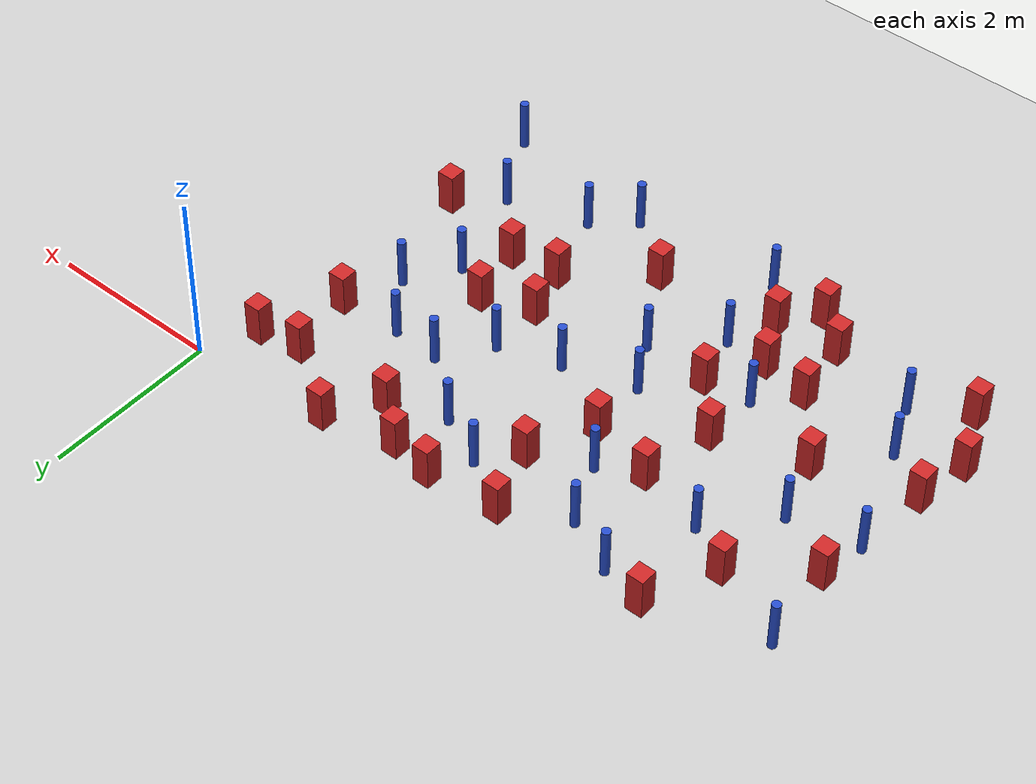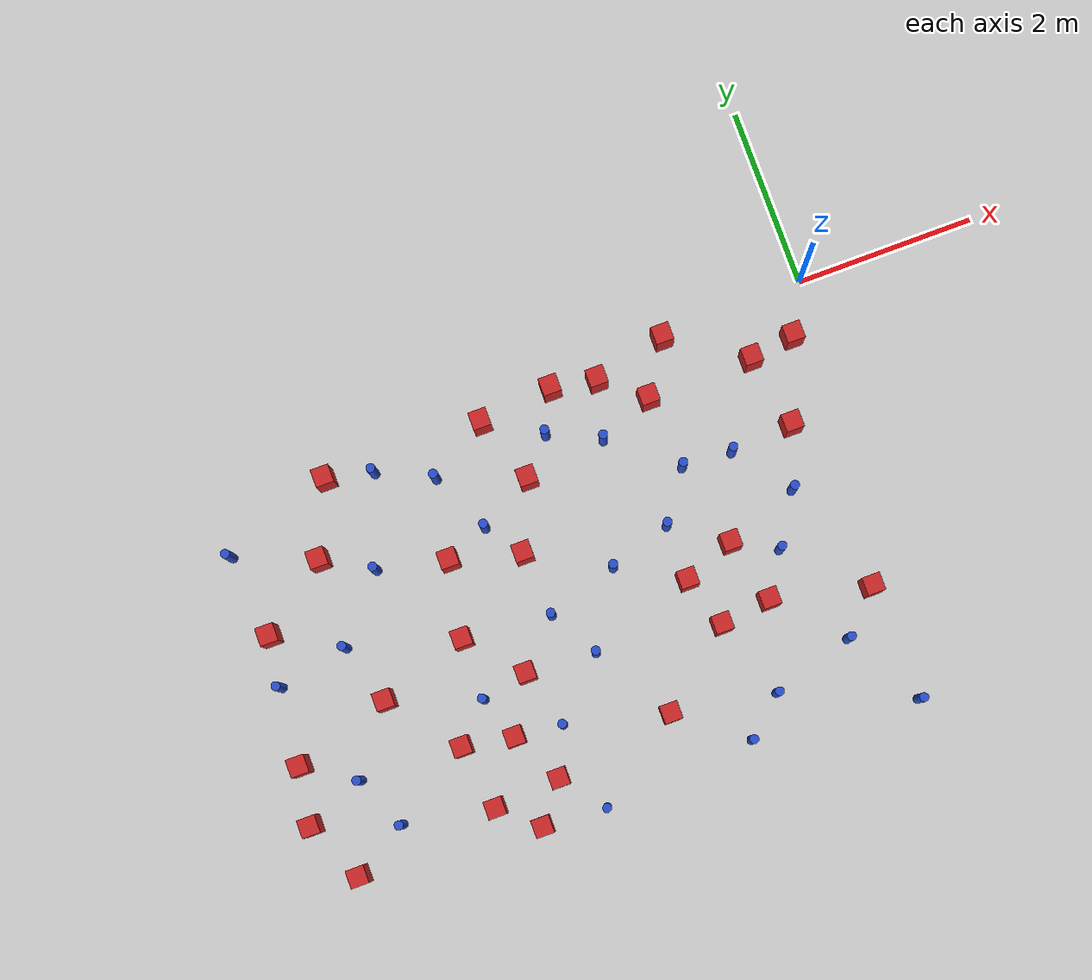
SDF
<sdf version="1.6">
 <world name="default">
  <model name="ground_plane">
   <static>1</static>
   <link name="link">
    <collision name="collision">
     <geometry><plane><normal>0 0 1</normal><size>100 100</size></plane></geometry>
     <surface><friction><ode><mu>100</mu><mu2>50</mu2></ode></friction></surface>
    </collision>
    <visual name="visual">
     <cast_shadows>0</cast_shadows>
     <geometry><plane><normal>0 0 1</normal><size>100 100</size></plane></geometry>
     <material>
      <ambient>1.0 1.0 1.0 1.0</ambient>
      <diffuse>0.8 0.8 0.8 1.0</diffuse>
      <specular>0.01 0.01 0.01 1.000000</specular>
     </material>
    </visual>
   </link>
  </model>
  <model name="pole_obstacle1">
   <static>true</static>
   <pose>-4.48256232331 -0.682127414277 2.88873142074e-08 -9.90536689837e-09 4.60219948989e-07 -1.2096599496e-07</pose>
   <link name="link">
    <pose>0 0 0.3 0 -0 0</pose>
    <inertial>
     <mass>1</mass>
     <inertia><ixx>0.145833</ixx><ixy>0</ixy><ixz>0</ixz><iyy>0.145833</iyy><iyz>0</iyz><izz>0.125</izz></inertia>
    </inertial>
    <collision name="collision">
     <geometry><cylinder><radius>0.05</radius><length>.6</length></cylinder></geometry>
    </collision>
    <visual name="visual">
     <geometry><cylinder><radius>0.05</radius><length>.6</length></cylinder></geometry>
     <material>
      <script><name>Gazebo/Blue</name><uri>file://media/materials/scripts/gazebo.material</uri></script>
     </material>
    </visual>
   </link>
  </model>
  <model name="square_post_obstacle8">
   <static>true</static>
   <pose>-4.6474370262 -1.57249042322 8.22691968438e-08 7.2212513382e-06 -7.54495500217e-07 2.29674213826e-05</pose>
   <link name="link">
    <pose>0 0 0.25 0 -0 0</pose>
    <inertial>
     <mass>100</mass>
     <inertia>
      <ixx>0.166667</ixx>
      <ixy>0</ixy>
      <ixz>0</ixz>
      <iyy>0.166667</iyy>
      <iyz>0</iyz>
      <izz>0.166667</izz>
     </inertia>
    </inertial>
    <collision name="collision"><geometry><box><size>.2 .2 .5</size></box></geometry></collision>
    <visual name="visual">
     <geometry><box><size>.2 .2 .5</size></box></geometry>
     <material>
      <script><name>Gazebo/Red</name><uri>file://media/materials/scripts/gazebo.material</uri></script>
     </material>
    </visual>
   </link>
  </model>
  <model name="pole_obstacle7">
   <static>true</static>
   <pose>-3.816750742 -2.50595241744 2.88873142074e-08 -9.90536689597e-09 4.60219948995e-07 -1.20965994957e-07</pose>
   <link name="link">
    <pose>0 0 0.3 0 -0 0</pose>
    <inertial>
     <mass>1</mass>
     <inertia><ixx>0.145833</ixx><ixy>0</ixy><ixz>0</ixz><iyy>0.145833</iyy><iyz>0</iyz><izz>0.125</izz></inertia>
    </inertial>
    <collision name="collision">
     <geometry><cylinder><radius>0.05</radius><length>.6</length></cylinder></geometry>
    </collision>
    <visual name="visual">
     <geometry><cylinder><radius>0.05</radius><length>.6</length></cylinder></geometry>
     <material>
      <script><name>Gazebo/Blue</name><uri>file://media/materials/scripts/gazebo.material</uri></script>
     </material>
    </visual>
   </link>
  </model>
  <model name="square_post_obstacle30">
   <static>true</static>
   <pose>-4.8008438077 -2.41623321414 8.22691968438e-08 7.2212513382e-06 -7.54495500217e-07 2.29674213826e-05</pose>
   <link name="link">
    <pose>0 0 0.25 0 -0 0</pose>
    <inertial>
     <mass>100</mass>
     <inertia>
      <ixx>0.166667</ixx>
      <ixy>0</ixy>
      <ixz>0</ixz>
      <iyy>0.166667</iyy>
      <iyz>0</iyz>
      <izz>0.166667</izz>
     </inertia>
    </inertial>
    <collision name="collision"><geometry><box><size>.2 .2 .5</size></box></geometry></collision>
    <visual name="visual">
     <geometry><box><size>.2 .2 .5</size></box></geometry>
     <material>
      <script><name>Gazebo/Red</name><uri>file://media/materials/scripts/gazebo.material</uri></script>
     </material>
    </visual>
   </link>
  </model>
  <model name="pole_obstacle26">
   <static>true</static>
   <pose>-3.96511217509 -4.63562692174 2.88873142074e-08 -9.90536690054e-09 4.60219948984e-07 -1.20965994964e-07</pose>
   <link name="link">
    <pose>0 0 0.3 0 -0 0</pose>
    <inertial>
     <mass>1</mass>
     <inertia><ixx>0.145833</ixx><ixy>0</ixy><ixz>0</ixz><iyy>0.145833</iyy><iyz>0</iyz><izz>0.125</izz></inertia>
    </inertial>
    <collision name="collision">
     <geometry><cylinder><radius>0.05</radius><length>.6</length></cylinder></geometry>
    </collision>
    <visual name="visual">
     <geometry><cylinder><radius>0.05</radius><length>.6</length></cylinder></geometry>
     <material>
      <script><name>Gazebo/Blue</name><uri>file://media/materials/scripts/gazebo.material</uri></script>
     </material>
    </visual>
   </link>
  </model>
  <model name="square_post_obstacle33">
   <static>true</static>
   <pose>-1.74691406362 -2.4382056888 8.22691968438e-08 7.2212513382e-06 -7.54495500217e-07 2.29674213826e-05</pose>
   <link name="link">
    <pose>0 0 0.25 0 -0 0</pose>
    <inertial>
     <mass>100</mass>
     <inertia>
      <ixx>0.166667</ixx>
      <ixy>0</ixy>
      <ixz>0</ixz>
      <iyy>0.166667</iyy>
      <iyz>0</iyz>
      <izz>0.166667</izz>
     </inertia>
    </inertial>
    <collision name="collision"><geometry><box><size>.2 .2 .5</size></box></geometry></collision>
    <visual name="visual">
     <geometry><box><size>.2 .2 .5</size></box></geometry>
     <material>
      <script><name>Gazebo/Red</name><uri>file://media/materials/scripts/gazebo.material</uri></script>
     </material>
    </visual>
   </link>
  </model>
  <model name="pole_obstacle29">
   <static>true</static>
   <pose>-4.16495708515 -1.3683757683 2.88873142074e-08 -9.90536689445e-09 4.60219948999e-07 -1.20965994956e-07</pose>
   <link name="link">
    <pose>0 0 0.3 0 -0 0</pose>
    <inertial>
     <mass>1</mass>
     <inertia><ixx>0.145833</ixx><ixy>0</ixy><ixz>0</ixz><iyy>0.145833</iyy><iyz>0</iyz><izz>0.125</izz></inertia>
    </inertial>
    <collision name="collision">
     <geometry><cylinder><radius>0.05</radius><length>.6</length></cylinder></geometry>
    </collision>
    <visual name="visual">
     <geometry><cylinder><radius>0.05</radius><length>.6</length></cylinder></geometry>
     <material>
      <script><name>Gazebo/Blue</name><uri>file://media/materials/scripts/gazebo.material</uri></script>
     </material>
    </visual>
   </link>
  </model>
  <model name="square_post_obstacle34">
   <static>true</static>
   <pose>-4.62961124829 -3.5913207542 8.22691968438e-08 7.2212513382e-06 -7.54495500217e-07 2.29674213826e-05</pose>
   <link name="link">
    <pose>0 0 0.25 0 -0 0</pose>
    <inertial>
     <mass>100</mass>
     <inertia>
      <ixx>0.166667</ixx>
      <ixy>0</ixy>
      <ixz>0</ixz>
      <iyy>0.166667</iyy>
      <iyz>0</iyz>
      <izz>0.166667</izz>
     </inertia>
    </inertial>
    <collision name="collision"><geometry><box><size>.2 .2 .5</size></box></geometry></collision>
    <visual name="visual">
     <geometry><box><size>.2 .2 .5</size></box></geometry>
     <material>
      <script><name>Gazebo/Red</name><uri>file://media/materials/scripts/gazebo.material</uri></script>
     </material>
    </visual>
   </link>
  </model>
  <model name="pole_obstacle33">
   <static>true</static>
   <pose>-6.33375835188 -3.4551613941 2.88873142074e-08 -9.90536690245e-09 4.6021994898e-07 -1.20965994966e-07</pose>
   <link name="link">
    <pose>0 0 0.3 0 -0 0</pose>
    <inertial>
     <mass>1</mass>
     <inertia><ixx>0.145833</ixx><ixy>0</ixy><ixz>0</ixz><iyy>0.145833</iyy><iyz>0</iyz><izz>0.125</izz></inertia>
    </inertial>
    <collision name="collision">
     <geometry><cylinder><radius>0.05</radius><length>.6</length></cylinder></geometry>
    </collision>
    <visual name="visual">
     <geometry><cylinder><radius>0.05</radius><length>.6</length></cylinder></geometry>
     <material>
      <script><name>Gazebo/Blue</name><uri>file://media/materials/scripts/gazebo.material</uri></script>
     </material>
    </visual>
   </link>
  </model>
  <model name="square_post_obstacle38">
   <static>true</static>
   <pose>-5.07591907823 -4.22730959868 8.22691968438e-08 7.22125133819e-06 -7.54495500217e-07 2.29674213826e-05</pose>
   <link name="link">
    <pose>0 0 0.25 0 -0 0</pose>
    <inertial>
     <mass>100</mass>
     <inertia>
      <ixx>0.166667</ixx>
      <ixy>0</ixy>
      <ixz>0</ixz>
      <iyy>0.166667</iyy>
      <iyz>0</iyz>
      <izz>0.166667</izz>
     </inertia>
    </inertial>
    <collision name="collision"><geometry><box><size>.2 .2 .5</size></box></geometry></collision>
    <visual name="visual">
     <geometry><box><size>.2 .2 .5</size></box></geometry>
     <material>
      <script><name>Gazebo/Red</name><uri>file://media/materials/scripts/gazebo.material</uri></script>
     </material>
    </visual>
   </link>
  </model>
  <model name="pole_obstacle41">
   <static>true</static>
   <pose>-1.37993979222 -1.52030531284 2.88873142074e-08 -9.90536689672e-09 4.60219948993e-07 -1.20965994959e-07</pose>
   <link name="link">
    <pose>0 0 0.3 0 -0 0</pose>
    <inertial>
     <mass>1</mass>
     <inertia><ixx>0.145833</ixx><ixy>0</ixy><ixz>0</ixz><iyy>0.145833</iyy><iyz>0</iyz><izz>0.125</izz></inertia>
    </inertial>
    <collision name="collision">
     <geometry><cylinder><radius>0.05</radius><length>.6</length></cylinder></geometry>
    </collision>
    <visual name="visual">
     <geometry><cylinder><radius>0.05</radius><length>.6</length></cylinder></geometry>
     <material>
      <script><name>Gazebo/Blue</name><uri>file://media/materials/scripts/gazebo.material</uri></script>
     </material>
    </visual>
   </link>
  </model>
  <model name="pole_obstacle42">
   <static>true</static>
   <pose>-6.80179766551 -2.22986992652 2.88873142074e-08 -9.90536690245e-09 4.6021994898e-07 -1.20965994966e-07</pose>
   <link name="link">
    <pose>0 0 0.3 0 -0 0</pose>
    <inertial>
     <mass>1</mass>
     <inertia><ixx>0.145833</ixx><ixy>0</ixy><ixz>0</ixz><iyy>0.145833</iyy><iyz>0</iyz><izz>0.125</izz></inertia>
    </inertial>
    <collision name="collision">
     <geometry><cylinder><radius>0.05</radius><length>.6</length></cylinder></geometry>
    </collision>
    <visual name="visual">
     <geometry><cylinder><radius>0.05</radius><length>.6</length></cylinder></geometry>
     <material>
      <script><name>Gazebo/Blue</name><uri>file://media/materials/scripts/gazebo.material</uri></script>
     </material>
    </visual>
   </link>
  </model>
  <model name="square_post_obstacle45">
   <static>true</static>
   <pose>-6.97961115178 -3.72867666224 8.22691968438e-08 7.2212513382e-06 -7.54495500217e-07 2.29674213826e-05</pose>
   <link name="link">
    <pose>0 0 0.25 0 -0 0</pose>
    <inertial>
     <mass>100</mass>
     <inertia>
      <ixx>0.166667</ixx>
      <ixy>0</ixy>
      <ixz>0</ixz>
      <iyy>0.166667</iyy>
      <iyz>0</iyz>
      <izz>0.166667</izz>
     </inertia>
    </inertial>
    <collision name="collision"><geometry><box><size>.2 .2 .5</size></box></geometry></collision>
    <visual name="visual">
     <geometry><box><size>.2 .2 .5</size></box></geometry>
     <material>
      <script><name>Gazebo/Red</name><uri>file://media/materials/scripts/gazebo.material</uri></script>
     </material>
    </visual>
   </link>
  </model>
  <model name="pole_obstacle52">
   <static>true</static>
   <pose>-2.31934597339 -2.03014902628 2.88873142074e-08 -9.9053668955e-09 4.60219948996e-07 -1.20965994957e-07</pose>
   <link name="link">
    <pose>0 0 0.3 0 -0 0</pose>
    <inertial>
     <mass>1</mass>
     <inertia><ixx>0.145833</ixx><ixy>0</ixy><ixz>0</ixz><iyy>0.145833</iyy><iyz>0</iyz><izz>0.125</izz></inertia>
    </inertial>
    <collision name="collision">
     <geometry><cylinder><radius>0.05</radius><length>.6</length></cylinder></geometry>
    </collision>
    <visual name="visual">
     <geometry><cylinder><radius>0.05</radius><length>.6</length></cylinder></geometry>
     <material>
      <script><name>Gazebo/Blue</name><uri>file://media/materials/scripts/gazebo.material</uri></script>
     </material>
    </visual>
   </link>
  </model>
  <model name="square_post_obstacle57">
   <static>true</static>
   <pose>-2.14033545094 -3.23000905375 8.22691968438e-08 7.2212513382e-06 -7.54495500217e-07 2.29674213826e-05</pose>
   <link name="link">
    <pose>0 0 0.25 0 -0 0</pose>
    <inertial>
     <mass>100</mass>
     <inertia>
      <ixx>0.166667</ixx>
      <ixy>0</ixy>
      <ixz>0</ixz>
      <iyy>0.166667</iyy>
      <iyz>0</iyz>
      <izz>0.166667</izz>
     </inertia>
    </inertial>
    <collision name="collision"><geometry><box><size>.2 .2 .5</size></box></geometry></collision>
    <visual name="visual">
     <geometry><box><size>.2 .2 .5</size></box></geometry>
     <material>
      <script><name>Gazebo/Red</name><uri>file://media/materials/scripts/gazebo.material</uri></script>
     </material>
    </visual>
   </link>
  </model>
  <model name="pole_obstacle54">
   <static>true</static>
   <pose>-1.83764317383 -4.12270464609 2.88873142074e-08 -9.90536689852e-09 4.60219948989e-07 -1.2096599496e-07</pose>
   <link name="link">
    <pose>0 0 0.3 0 -0 0</pose>
    <inertial>
     <mass>1</mass>
     <inertia><ixx>0.145833</ixx><ixy>0</ixy><ixz>0</ixz><iyy>0.145833</iyy><iyz>0</iyz><izz>0.125</izz></inertia>
    </inertial>
    <collision name="collision">
     <geometry><cylinder><radius>0.05</radius><length>.6</length></cylinder></geometry>
    </collision>
    <visual name="visual">
     <geometry><cylinder><radius>0.05</radius><length>.6</length></cylinder></geometry>
     <material>
      <script><name>Gazebo/Blue</name><uri>file://media/materials/scripts/gazebo.material</uri></script>
     </material>
    </visual>
   </link>
  </model>
  <model name="square_post_obstacle62">
   <static>true</static>
   <pose>-5.79745076857 -2.7494438376 8.22691968438e-08 7.2212513382e-06 -7.54495500217e-07 2.29674213826e-05</pose>
   <link name="link">
    <pose>0 0 0.25 0 -0 0</pose>
    <inertial>
     <mass>100</mass>
     <inertia>
      <ixx>0.166667</ixx>
      <ixy>0</ixy>
      <ixz>0</ixz>
      <iyy>0.166667</iyy>
      <iyz>0</iyz>
      <izz>0.166667</izz>
     </inertia>
    </inertial>
    <collision name="collision"><geometry><box><size>.2 .2 .5</size></box></geometry></collision>
    <visual name="visual">
     <geometry><box><size>.2 .2 .5</size></box></geometry>
     <material>
      <script><name>Gazebo/Red</name><uri>file://media/materials/scripts/gazebo.material</uri></script>
     </material>
    </visual>
   </link>
  </model>
  <model name="pole_obstacle63">
   <static>true</static>
   <pose>-5.08738122883 -0.395375101101 2.88873142074e-08 -9.90536689981e-09 4.60219948986e-07 -1.20965994962e-07</pose>
   <link name="link">
    <pose>0 0 0.3 0 -0 0</pose>
    <inertial>
     <mass>1</mass>
     <inertia><ixx>0.145833</ixx><ixy>0</ixy><ixz>0</ixz><iyy>0.145833</iyy><iyz>0</iyz><izz>0.125</izz></inertia>
    </inertial>
    <collision name="collision">
     <geometry><cylinder><radius>0.05</radius><length>.6</length></cylinder></geometry>
    </collision>
    <visual name="visual">
     <geometry><cylinder><radius>0.05</radius><length>.6</length></cylinder></geometry>
     <material>
      <script><name>Gazebo/Blue</name><uri>file://media/materials/scripts/gazebo.material</uri></script>
     </material>
    </visual>
   </link>
  </model>
  <model name="square_post_obstacle66">
   <static>true</static>
   <pose>-1.57399593193 -3.156085923 8.22691968438e-08 7.2212513382e-06 -7.54495500217e-07 2.29674213826e-05</pose>
   <link name="link">
    <pose>0 0 0.25 0 -0 0</pose>
    <inertial>
     <mass>100</mass>
     <inertia>
      <ixx>0.166667</ixx>
      <ixy>0</ixy>
      <ixz>0</ixz>
      <iyy>0.166667</iyy>
      <iyz>0</iyz>
      <izz>0.166667</izz>
     </inertia>
    </inertial>
    <collision name="collision"><geometry><box><size>.2 .2 .5</size></box></geometry></collision>
    <visual name="visual">
     <geometry><box><size>.2 .2 .5</size></box></geometry>
     <material>
      <script><name>Gazebo/Red</name><uri>file://media/materials/scripts/gazebo.material</uri></script>
     </material>
    </visual>
   </link>
  </model>
  <model name="square_post_obstacle67">
   <static>true</static>
   <pose>-3.55502041269 -1.03231475909 8.22691968438e-08 7.2212513382e-06 -7.54495500217e-07 2.29674213826e-05</pose>
   <link name="link">
    <pose>0 0 0.25 0 -0 0</pose>
    <inertial>
     <mass>100</mass>
     <inertia>
      <ixx>0.166667</ixx>
      <ixy>0</ixy>
      <ixz>0</ixz>
      <iyy>0.166667</iyy>
      <iyz>0</iyz>
      <izz>0.166667</izz>
     </inertia>
    </inertial>
    <collision name="collision"><geometry><box><size>.2 .2 .5</size></box></geometry></collision>
    <visual name="visual">
     <geometry><box><size>.2 .2 .5</size></box></geometry>
     <material>
      <script><name>Gazebo/Red</name><uri>file://media/materials/scripts/gazebo.material</uri></script>
     </material>
    </visual>
   </link>
  </model>
  <model name="square_post_obstacle70">
   <static>true</static>
   <pose>-3.81846954681 -0.283123942665 8.22691968438e-08 7.2212513382e-06 -7.54495500217e-07 2.29674213826e-05</pose>
   <link name="link">
    <pose>0 0 0.25 0 -0 0</pose>
    <inertial>
     <mass>100</mass>
     <inertia>
      <ixx>0.166667</ixx>
      <ixy>0</ixy>
      <ixz>0</ixz>
      <iyy>0.166667</iyy>
      <iyz>0</iyz>
      <izz>0.166667</izz>
     </inertia>
    </inertial>
    <collision name="collision"><geometry><box><size>.2 .2 .5</size></box></geometry></collision>
    <visual name="visual">
     <geometry><box><size>.2 .2 .5</size></box></geometry>
     <material>
      <script><name>Gazebo/Red</name><uri>file://media/materials/scripts/gazebo.material</uri></script>
     </material>
    </visual>
   </link>
  </model>
  <model name="square_post_obstacle72">
   <static>true</static>
   <pose>-5.95590247106 -1.08578072707 8.22691968438e-08 7.2212513382e-06 -7.54495500217e-07 2.29674213826e-05</pose>
   <link name="link">
    <pose>0 0 0.25 0 -0 0</pose>
    <inertial>
     <mass>100</mass>
     <inertia>
      <ixx>0.166667</ixx>
      <ixy>0</ixy>
      <ixz>0</ixz>
      <iyy>0.166667</iyy>
      <iyz>0</iyz>
      <izz>0.166667</izz>
     </inertia>
    </inertial>
    <collision name="collision"><geometry><box><size>.2 .2 .5</size></box></geometry></collision>
    <visual name="visual">
     <geometry><box><size>.2 .2 .5</size></box></geometry>
     <material>
      <script><name>Gazebo/Red</name><uri>file://media/materials/scripts/gazebo.material</uri></script>
     </material>
    </visual>
   </link>
  </model>
  <model name="square_post_obstacle76">
   <static>true</static>
   <pose>-2.48041100913 -0.282626245063 8.22691968438e-08 7.2212513382e-06 -7.54495500217e-07 2.29674213826e-05</pose>
   <link name="link">
    <pose>0 0 0.25 0 -0 0</pose>
    <inertial>
     <mass>100</mass>
     <inertia>
      <ixx>0.166667</ixx>
      <ixy>0</ixy>
      <ixz>0</ixz>
      <iyy>0.166667</iyy>
      <iyz>0</iyz>
      <izz>0.166667</izz>
     </inertia>
    </inertial>
    <collision name="collision"><geometry><box><size>.2 .2 .5</size></box></geometry></collision>
    <visual name="visual">
     <geometry><box><size>.2 .2 .5</size></box></geometry>
     <material>
      <script><name>Gazebo/Red</name><uri>file://media/materials/scripts/gazebo.material</uri></script>
     </material>
    </visual>
   </link>
  </model>
  <model name="pole_obstacle76">
   <static>true</static>
   <pose>-6.07376556748 -4.04742443338 2.88873142074e-08 -9.90536690819e-09 4.60219948966e-07 -1.20965994975e-07</pose>
   <link name="link">
    <pose>0 0 0.3 0 -0 0</pose>
    <inertial>
     <mass>1</mass>
     <inertia><ixx>0.145833</ixx><ixy>0</ixy><ixz>0</ixz><iyy>0.145833</iyy><iyz>0</iyz><izz>0.125</izz></inertia>
    </inertial>
    <collision name="collision">
     <geometry><cylinder><radius>0.05</radius><length>.6</length></cylinder></geometry>
    </collision>
    <visual name="visual">
     <geometry><cylinder><radius>0.05</radius><length>.6</length></cylinder></geometry>
     <material>
      <script><name>Gazebo/Blue</name><uri>file://media/materials/scripts/gazebo.material</uri></script>
     </material>
    </visual>
   </link>
  </model>
  <model name="pole_obstacle81">
   <static>true</static>
   <pose>-1.9393557773 -1.48946138656 2.88873142074e-08 -9.90536689672e-09 4.60219948993e-07 -1.20965994959e-07</pose>
   <link name="link">
    <pose>0 0 0.3 0 -0 0</pose>
    <inertial>
     <mass>1</mass>
     <inertia><ixx>0.145833</ixx><ixy>0</ixy><ixz>0</ixz><iyy>0.145833</iyy><iyz>0</iyz><izz>0.125</izz></inertia>
    </inertial>
    <collision name="collision">
     <geometry><cylinder><radius>0.05</radius><length>.6</length></cylinder></geometry>
    </collision>
    <visual name="visual">
     <geometry><cylinder><radius>0.05</radius><length>.6</length></cylinder></geometry>
     <material>
      <script><name>Gazebo/Blue</name><uri>file://media/materials/scripts/gazebo.material</uri></script>
     </material>
    </visual>
   </link>
  </model>
  <model name="pole_obstacle87">
   <static>true</static>
   <pose>-3.50674768376 -3.0472135589 2.88873142074e-08 -9.90536690232e-09 4.6021994898e-07 -1.20965994968e-07</pose>
   <link name="link">
    <pose>0 0 0.3 0 -0 0</pose>
    <inertial>
     <mass>1</mass>
     <inertia><ixx>0.145833</ixx><ixy>0</ixy><ixz>0</ixz><iyy>0.145833</iyy><iyz>0</iyz><izz>0.125</izz></inertia>
    </inertial>
    <collision name="collision">
     <geometry><cylinder><radius>0.05</radius><length>.6</length></cylinder></geometry>
    </collision>
    <visual name="visual">
     <geometry><cylinder><radius>0.05</radius><length>.6</length></cylinder></geometry>
     <material>
      <script><name>Gazebo/Blue</name><uri>file://media/materials/scripts/gazebo.material</uri></script>
     </material>
    </visual>
   </link>
  </model>
  <model name="pole_obstacle88">
   <static>true</static>
   <pose>-0.433065052759 -4.70892191869 2.88873142074e-08 -9.90536689683e-09 4.60219948993e-07 -1.20965994957e-07</pose>
   <link name="link">
    <pose>0 0 0.3 0 -0 0</pose>
    <inertial>
     <mass>1</mass>
     <inertia><ixx>0.145833</ixx><ixy>0</ixy><ixz>0</ixz><iyy>0.145833</iyy><iyz>0</iyz><izz>0.125</izz></inertia>
    </inertial>
    <collision name="collision">
     <geometry><cylinder><radius>0.05</radius><length>.6</length></cylinder></geometry>
    </collision>
    <visual name="visual">
     <geometry><cylinder><radius>0.05</radius><length>.6</length></cylinder></geometry>
     <material>
      <script><name>Gazebo/Blue</name><uri>file://media/materials/scripts/gazebo.material</uri></script>
     </material>
    </visual>
   </link>
  </model>
  <model name="square_post_obstacle84">
   <static>true</static>
   <pose>-2.98490896044 -0.195848546672 8.22691968438e-08 7.2212513382e-06 -7.54495500217e-07 2.29674213826e-05</pose>
   <link name="link">
    <pose>0 0 0.25 0 -0 0</pose>
    <inertial>
     <mass>100</mass>
     <inertia>
      <ixx>0.166667</ixx>
      <ixy>0</ixy>
      <ixz>0</ixz>
      <iyy>0.166667</iyy>
      <iyz>0</iyz>
      <izz>0.166667</izz>
     </inertia>
    </inertial>
    <collision name="collision"><geometry><box><size>.2 .2 .5</size></box></geometry></collision>
    <visual name="visual">
     <geometry><box><size>.2 .2 .5</size></box></geometry>
     <material>
      <script><name>Gazebo/Red</name><uri>file://media/materials/scripts/gazebo.material</uri></script>
     </material>
    </visual>
   </link>
  </model>
  <model name="square_post_obstacle85">
   <static>true</static>
   <pose>-0.489006921023 -3.40232617651 8.22691968438e-08 7.2212513382e-06 -7.54495500217e-07 2.29674213826e-05</pose>
   <link name="link">
    <pose>0 0 0.25 0 -0 0</pose>
    <inertial>
     <mass>100</mass>
     <inertia>
      <ixx>0.166667</ixx>
      <ixy>0</ixy>
      <ixz>0</ixz>
      <iyy>0.166667</iyy>
      <iyz>0</iyz>
      <izz>0.166667</izz>
     </inertia>
    </inertial>
    <collision name="collision"><geometry><box><size>.2 .2 .5</size></box></geometry></collision>
    <visual name="visual">
     <geometry><box><size>.2 .2 .5</size></box></geometry>
     <material>
      <script><name>Gazebo/Red</name><uri>file://media/materials/scripts/gazebo.material</uri></script>
     </material>
    </visual>
   </link>
  </model>
  <model name="square_post_obstacle102">
   <static>true</static>
   <pose>-0.831196389787 -0.641540344421 8.22691968438e-08 7.2212513382e-06 -7.54495500217e-07 2.29674213826e-05</pose>
   <link name="link">
    <pose>0 0 0.25 0 -0 0</pose>
    <inertial>
     <mass>100</mass>
     <inertia>
      <ixx>0.166667</ixx>
      <ixy>0</ixy>
      <ixz>0</ixz>
      <iyy>0.166667</iyy>
      <iyz>0</iyz>
      <izz>0.166667</izz>
     </inertia>
    </inertial>
    <collision name="collision"><geometry><box><size>.2 .2 .5</size></box></geometry></collision>
    <visual name="visual">
     <geometry><box><size>.2 .2 .5</size></box></geometry>
     <material>
      <script><name>Gazebo/Red</name><uri>file://media/materials/scripts/gazebo.material</uri></script>
     </material>
    </visual>
   </link>
  </model>
  <model name="pole_obstacle118">
   <static>true</static>
   <pose>-2.26540579371 -4.50014755744 2.88873142074e-08 -9.90536689859e-09 4.60219948989e-07 -1.20965994961e-07</pose>
   <link name="link">
    <pose>0 0 0.3 0 -0 0</pose>
    <inertial>
     <mass>1</mass>
     <inertia><ixx>0.145833</ixx><ixy>0</ixy><ixz>0</ixz><iyy>0.145833</iyy><iyz>0</iyz><izz>0.125</izz></inertia>
    </inertial>
    <collision name="collision">
     <geometry><cylinder><radius>0.05</radius><length>.6</length></cylinder></geometry>
    </collision>
    <visual name="visual">
     <geometry><cylinder><radius>0.05</radius><length>.6</length></cylinder></geometry>
     <material>
      <script><name>Gazebo/Blue</name><uri>file://media/materials/scripts/gazebo.material</uri></script>
     </material>
    </visual>
   </link>
  </model>
  <model name="square_post_obstacle106">
   <static>true</static>
   <pose>-6.87989568143 -3.09163449804 8.22691968438e-08 7.2212513382e-06 -7.54495500217e-07 2.29674213826e-05</pose>
   <link name="link">
    <pose>0 0 0.25 0 -0 0</pose>
    <inertial>
     <mass>100</mass>
     <inertia>
      <ixx>0.166667</ixx>
      <ixy>0</ixy>
      <ixz>0</ixz>
      <iyy>0.166667</iyy>
      <iyz>0</iyz>
      <izz>0.166667</izz>
     </inertia>
    </inertial>
    <collision name="collision"><geometry><box><size>.2 .2 .5</size></box></geometry></collision>
    <visual name="visual">
     <geometry><box><size>.2 .2 .5</size></box></geometry>
     <material>
      <script><name>Gazebo/Red</name><uri>file://media/materials/scripts/gazebo.material</uri></script>
     </material>
    </visual>
   </link>
  </model>
  <model name="pole_obstacle119">
   <static>true</static>
   <pose>-3.20684661266 -0.645701694814 2.88873142074e-08 -9.90536689285e-09 4.60219949002e-07 -1.20965994953e-07</pose>
   <link name="link">
    <pose>0 0 0.3 0 -0 0</pose>
    <inertial>
     <mass>1</mass>
     <inertia><ixx>0.145833</ixx><ixy>0</ixy><ixz>0</ixz><iyy>0.145833</iyy><iyz>0</iyz><izz>0.125</izz></inertia>
    </inertial>
    <collision name="collision">
     <geometry><cylinder><radius>0.05</radius><length>.6</length></cylinder></geometry>
    </collision>
    <visual name="visual">
     <geometry><cylinder><radius>0.05</radius><length>.6</length></cylinder></geometry>
     <material>
      <script><name>Gazebo/Blue</name><uri>file://media/materials/scripts/gazebo.material</uri></script>
     </material>
    </visual>
   </link>
  </model>
  <model name="pole_obstacle121">
   <static>true</static>
   <pose>-4.80580803542 -3.10242670116 2.88873142074e-08 -9.90536690245e-09 4.6021994898e-07 -1.20965994966e-07</pose>
   <link name="link">
    <pose>0 0 0.3 0 -0 0</pose>
    <inertial>
     <mass>1</mass>
     <inertia><ixx>0.145833</ixx><ixy>0</ixy><ixz>0</ixz><iyy>0.145833</iyy><iyz>0</iyz><izz>0.125</izz></inertia>
    </inertial>
    <collision name="collision">
     <geometry><cylinder><radius>0.05</radius><length>.6</length></cylinder></geometry>
    </collision>
    <visual name="visual">
     <geometry><cylinder><radius>0.05</radius><length>.6</length></cylinder></geometry>
     <material>
      <script><name>Gazebo/Blue</name><uri>file://media/materials/scripts/gazebo.material</uri></script>
     </material>
    </visual>
   </link>
  </model>
  <model name="pole_obstacle137">
   <static>true</static>
   <pose>-4.10434087686 -3.6487826974 2.88873142074e-08 -9.90536690245e-09 4.6021994898e-07 -1.20965994966e-07</pose>
   <link name="link">
    <pose>0 0 0.3 0 -0 0</pose>
    <inertial>
     <mass>1</mass>
     <inertia><ixx>0.145833</ixx><ixy>0</ixy><ixz>0</ixz><iyy>0.145833</iyy><iyz>0</iyz><izz>0.125</izz></inertia>
    </inertial>
    <collision name="collision">
     <geometry><cylinder><radius>0.05</radius><length>.6</length></cylinder></geometry>
    </collision>
    <visual name="visual">
     <geometry><cylinder><radius>0.05</radius><length>.6</length></cylinder></geometry>
     <material>
      <script><name>Gazebo/Blue</name><uri>file://media/materials/scripts/gazebo.material</uri></script>
     </material>
    </visual>
   </link>
  </model>
  <model name="square_post_obstacle124">
   <static>true</static>
   <pose>-5.60695419741 -0.277272276515 8.22691968438e-08 7.2212513382e-06 -7.54495500217e-07 2.29674213826e-05</pose>
   <link name="link">
    <pose>0 0 0.25 0 -0 0</pose>
    <inertial>
     <mass>100</mass>
     <inertia>
      <ixx>0.166667</ixx>
      <ixy>0</ixy>
      <ixz>0</ixz>
      <iyy>0.166667</iyy>
      <iyz>0</iyz>
      <izz>0.166667</izz>
     </inertia>
    </inertial>
    <collision name="collision"><geometry><box><size>.2 .2 .5</size></box></geometry></collision>
    <visual name="visual">
     <geometry><box><size>.2 .2 .5</size></box></geometry>
     <material>
      <script><name>Gazebo/Red</name><uri>file://media/materials/scripts/gazebo.material</uri></script>
     </material>
    </visual>
   </link>
  </model>
  <model name="square_post_obstacle125">
   <static>true</static>
   <pose>-2.98477727234 -3.92984585648 8.22691968438e-08 7.2212513382e-06 -7.54495500217e-07 2.29674213826e-05</pose>
   <link name="link">
    <pose>0 0 0.25 0 -0 0</pose>
    <inertial>
     <mass>100</mass>
     <inertia>
      <ixx>0.166667</ixx>
      <ixy>0</ixy>
      <ixz>0</ixz>
      <iyy>0.166667</iyy>
      <iyz>0</iyz>
      <izz>0.166667</izz>
     </inertia>
    </inertial>
    <collision name="collision"><geometry><box><size>.2 .2 .5</size></box></geometry></collision>
    <visual name="visual">
     <geometry><box><size>.2 .2 .5</size></box></geometry>
     <material>
      <script><name>Gazebo/Red</name><uri>file://media/materials/scripts/gazebo.material</uri></script>
     </material>
    </visual>
   </link>
  </model>
  <model name="square_post_obstacle129">
   <static>true</static>
   <pose>-6.67394298799 -4.39961832617 8.22691968438e-08 7.2212513382e-06 -7.54495500217e-07 2.29674213826e-05</pose>
   <link name="link">
    <pose>0 0 0.25 0 -0 0</pose>
    <inertial>
     <mass>100</mass>
     <inertia>
      <ixx>0.166667</ixx>
      <ixy>0</ixy>
      <ixz>0</ixz>
      <iyy>0.166667</iyy>
      <iyz>0</iyz>
      <izz>0.166667</izz>
     </inertia>
    </inertial>
    <collision name="collision"><geometry><box><size>.2 .2 .5</size></box></geometry></collision>
    <visual name="visual">
     <geometry><box><size>.2 .2 .5</size></box></geometry>
     <material>
      <script><name>Gazebo/Red</name><uri>file://media/materials/scripts/gazebo.material</uri></script>
     </material>
    </visual>
   </link>
  </model>
  <model name="square_post_obstacle136">
   <static>true</static>
   <pose>-4.67178367451 -4.58331127081 8.22691968438e-08 7.22125133819e-06 -7.54495500217e-07 2.29674213826e-05</pose>
   <link name="link">
    <pose>0 0 0.25 0 -0 0</pose>
    <inertial>
     <mass>100</mass>
     <inertia>
      <ixx>0.166667</ixx>
      <ixy>0</ixy>
      <ixz>0</ixz>
      <iyy>0.166667</iyy>
      <iyz>0</iyz>
      <izz>0.166667</izz>
     </inertia>
    </inertial>
    <collision name="collision"><geometry><box><size>.2 .2 .5</size></box></geometry></collision>
    <visual name="visual">
     <geometry><box><size>.2 .2 .5</size></box></geometry>
     <material>
      <script><name>Gazebo/Red</name><uri>file://media/materials/scripts/gazebo.material</uri></script>
     </material>
    </visual>
   </link>
  </model>
  <model name="pole_obstacle154">
   <static>true</static>
   <pose>-0.910939861109 -2.13224247097 2.88873142074e-08 -9.90536689636e-09 4.60219948994e-07 -1.20965994958e-07</pose>
   <link name="link">
    <pose>0 0 0.3 0 -0 0</pose>
    <inertial>
     <mass>1</mass>
     <inertia><ixx>0.145833</ixx><ixy>0</ixy><ixz>0</ixz><iyy>0.145833</iyy><iyz>0</iyz><izz>0.125</izz></inertia>
    </inertial>
    <collision name="collision">
     <geometry><cylinder><radius>0.05</radius><length>.6</length></cylinder></geometry>
    </collision>
    <visual name="visual">
     <geometry><cylinder><radius>0.05</radius><length>.6</length></cylinder></geometry>
     <material>
      <script><name>Gazebo/Blue</name><uri>file://media/materials/scripts/gazebo.material</uri></script>
     </material>
    </visual>
   </link>
  </model>
  <model name="square_post_obstacle148">
   <static>true</static>
   <pose>-2.02554708108 -0.660023204118 8.22691968438e-08 7.2212513382e-06 -7.54495500217e-07 2.29674213826e-05</pose>
   <link name="link">
    <pose>0 0 0.25 0 -0 0</pose>
    <inertial>
     <mass>100</mass>
     <inertia>
      <ixx>0.166667</ixx>
      <ixy>0</ixy>
      <ixz>0</ixz>
      <iyy>0.166667</iyy>
      <iyz>0</iyz>
      <izz>0.166667</izz>
     </inertia>
    </inertial>
    <collision name="collision"><geometry><box><size>.2 .2 .5</size></box></geometry></collision>
    <visual name="visual">
     <geometry><box><size>.2 .2 .5</size></box></geometry>
     <material>
      <script><name>Gazebo/Red</name><uri>file://media/materials/scripts/gazebo.material</uri></script>
     </material>
    </visual>
   </link>
  </model>
  <model name="square_post_obstacle154">
   <static>true</static>
   <pose>-6.72547252961 -1.67034380565 8.22691968438e-08 7.2212513382e-06 -7.54495500217e-07 2.29674213826e-05</pose>
   <link name="link">
    <pose>0 0 0.25 0 -0 0</pose>
    <inertial>
     <mass>100</mass>
     <inertia>
      <ixx>0.166667</ixx>
      <ixy>0</ixy>
      <ixz>0</ixz>
      <iyy>0.166667</iyy>
      <iyz>0</iyz>
      <izz>0.166667</izz>
     </inertia>
    </inertial>
    <collision name="collision"><geometry><box><size>.2 .2 .5</size></box></geometry></collision>
    <visual name="visual">
     <geometry><box><size>.2 .2 .5</size></box></geometry>
     <material>
      <script><name>Gazebo/Red</name><uri>file://media/materials/scripts/gazebo.material</uri></script>
     </material>
    </visual>
   </link>
  </model>
  <model name="pole_obstacle163">
   <static>true</static>
   <pose>-2.63813611391 -0.912844334364 2.88873142074e-08 -9.90536689285e-09 4.60219949002e-07 -1.20965994953e-07</pose>
   <link name="link">
    <pose>0 0 0.3 0 -0 0</pose>
    <inertial>
     <mass>1</mass>
     <inertia><ixx>0.145833</ixx><ixy>0</ixy><ixz>0</ixz><iyy>0.145833</iyy><iyz>0</iyz><izz>0.125</izz></inertia>
    </inertial>
    <collision name="collision">
     <geometry><cylinder><radius>0.05</radius><length>.6</length></cylinder></geometry>
    </collision>
    <visual name="visual">
     <geometry><cylinder><radius>0.05</radius><length>.6</length></cylinder></geometry>
     <material>
      <script><name>Gazebo/Blue</name><uri>file://media/materials/scripts/gazebo.material</uri></script>
     </material>
    </visual>
   </link>
  </model>
  <model name="pole_obstacle164">
   <static>true</static>
   <pose>-6.84073999234 -0.72237744343 2.88873142074e-08 -9.90536689837e-09 4.60219948989e-07 -1.2096599496e-07</pose>
   <link name="link">
    <pose>0 0 0.3 0 -0 0</pose>
    <inertial>
     <mass>1</mass>
     <inertia><ixx>0.145833</ixx><ixy>0</ixy><ixz>0</ixz><iyy>0.145833</iyy><iyz>0</iyz><izz>0.125</izz></inertia>
    </inertial>
    <collision name="collision">
     <geometry><cylinder><radius>0.05</radius><length>.6</length></cylinder></geometry>
    </collision>
    <visual name="visual">
     <geometry><cylinder><radius>0.05</radius><length>.6</length></cylinder></geometry>
     <material>
      <script><name>Gazebo/Blue</name><uri>file://media/materials/scripts/gazebo.material</uri></script>
     </material>
    </visual>
   </link>
  </model>
  <model name="pole_obstacle166">
   <static>true</static>
   <pose>-5.42130743709 -1.39287766508 2.88873142074e-08 -9.90536689445e-09 4.60219948999e-07 -1.20965994956e-07</pose>
   <link name="link">
    <pose>0 0 0.3 0 -0 0</pose>
    <inertial>
     <mass>1</mass>
     <inertia><ixx>0.145833</ixx><ixy>0</ixy><ixz>0</ixz><iyy>0.145833</iyy><iyz>0</iyz><izz>0.125</izz></inertia>
    </inertial>
    <collision name="collision">
     <geometry><cylinder><radius>0.05</radius><length>.6</length></cylinder></geometry>
    </collision>
    <visual name="visual">
     <geometry><cylinder><radius>0.05</radius><length>.6</length></cylinder></geometry>
     <material>
      <script><name>Gazebo/Blue</name><uri>file://media/materials/scripts/gazebo.material</uri></script>
     </material>
    </visual>
   </link>
  </model>
  <model name="square_post_obstacle160">
   <static>true</static>
   <pose>-3.87574939339 -1.7777651461 8.22691968438e-08 7.22125133819e-06 -7.54495500217e-07 2.29674213826e-05</pose>
   <link name="link">
    <pose>0 0 0.25 0 -0 0</pose>
    <inertial>
     <mass>100</mass>
     <inertia>
      <ixx>0.166667</ixx>
      <ixy>0</ixy>
      <ixz>0</ixz>
      <iyy>0.166667</iyy>
      <iyz>0</iyz>
      <izz>0.166667</izz>
     </inertia>
    </inertial>
    <collision name="collision"><geometry><box><size>.2 .2 .5</size></box></geometry></collision>
    <visual name="visual">
     <geometry><box><size>.2 .2 .5</size></box></geometry>
     <material>
      <script><name>Gazebo/Red</name><uri>file://media/materials/scripts/gazebo.material</uri></script>
     </material>
    </visual>
   </link>
  </model>
  <model name="square_post_obstacle163">
   <static>true</static>
   <pose>-1.6564551952 -0.0898524343591 8.22691968438e-08 7.2212513382e-06 -7.54495500217e-07 2.29674213826e-05</pose>
   <link name="link">
    <pose>0 0 0.25 0 -0 0</pose>
    <inertial>
     <mass>100</mass>
     <inertia>
      <ixx>0.166667</ixx>
      <ixy>0</ixy>
      <ixz>0</ixz>
      <iyy>0.166667</iyy>
      <iyz>0</iyz>
      <izz>0.166667</izz>
     </inertia>
    </inertial>
    <collision name="collision"><geometry><box><size>.2 .2 .5</size></box></geometry></collision>
    <visual name="visual">
     <geometry><box><size>.2 .2 .5</size></box></geometry>
     <material>
      <script><name>Gazebo/Red</name><uri>file://media/materials/scripts/gazebo.material</uri></script>
     </material>
    </visual>
   </link>
  </model>
  <model name="square_post_obstacle168">
   <static>true</static>
   <pose>-0.676856664182 -1.46465089747 8.22691968438e-08 7.2212513382e-06 -7.54495500217e-07 2.29674213826e-05</pose>
   <link name="link">
    <pose>0 0 0.25 0 -0 0</pose>
    <inertial>
     <mass>100</mass>
     <inertia>
      <ixx>0.166667</ixx>
      <ixy>0</ixy>
      <ixz>0</ixz>
      <iyy>0.166667</iyy>
      <iyz>0</iyz>
      <izz>0.166667</izz>
     </inertia>
    </inertial>
    <collision name="collision"><geometry><box><size>.2 .2 .5</size></box></geometry></collision>
    <visual name="visual">
     <geometry><box><size>.2 .2 .5</size></box></geometry>
     <material>
      <script><name>Gazebo/Red</name><uri>file://media/materials/scripts/gazebo.material</uri></script>
     </material>
    </visual>
   </link>
  </model>
  <model name="square_post_obstacle169">
   <static>true</static>
   <pose>-5.19283847165 -3.49596962687 8.22691968438e-08 7.2212513382e-06 -7.54495500217e-07 2.29674213826e-05</pose>
   <link name="link">
    <pose>0 0 0.25 0 -0 0</pose>
    <inertial>
     <mass>100</mass>
     <inertia>
      <ixx>0.166667</ixx>
      <ixy>0</ixy>
      <ixz>0</ixz>
      <iyy>0.166667</iyy>
      <iyz>0</iyz>
      <izz>0.166667</izz>
     </inertia>
    </inertial>
    <collision name="collision"><geometry><box><size>.2 .2 .5</size></box></geometry></collision>
    <visual name="visual">
     <geometry><box><size>.2 .2 .5</size></box></geometry>
     <material>
      <script><name>Gazebo/Red</name><uri>file://media/materials/scripts/gazebo.material</uri></script>
     </material>
    </visual>
   </link>
  </model>
  <model name="pole_obstacle179">
   <static>true</static>
   <pose>-1.26572450696 -2.69177654532 2.88873142074e-08 -9.90536689791e-09 4.6021994899e-07 -1.20965994959e-07</pose>
   <link name="link">
    <pose>0 0 0.3 0 -0 0</pose>
    <inertial>
     <mass>1</mass>
     <inertia><ixx>0.145833</ixx><ixy>0</ixy><ixz>0</ixz><iyy>0.145833</iyy><iyz>0</iyz><izz>0.125</izz></inertia>
    </inertial>
    <collision name="collision">
     <geometry><cylinder><radius>0.05</radius><length>.6</length></cylinder></geometry>
    </collision>
    <visual name="visual">
     <geometry><cylinder><radius>0.05</radius><length>.6</length></cylinder></geometry>
     <material>
      <script><name>Gazebo/Blue</name><uri>file://media/materials/scripts/gazebo.material</uri></script>
     </material>
    </visual>
   </link>
  </model>
  <model name="pole_obstacle181">
   <static>true</static>
   <pose>-6.00927602493 -2.06976273082 2.88873142074e-08 -9.90536690245e-09 4.6021994898e-07 -1.20965994966e-07</pose>
   <link name="link">
    <pose>0 0 0.3 0 -0 0</pose>
    <inertial>
     <mass>1</mass>
     <inertia><ixx>0.145833</ixx><ixy>0</ixy><ixz>0</ixz><iyy>0.145833</iyy><iyz>0</iyz><izz>0.125</izz></inertia>
    </inertial>
    <collision name="collision">
     <geometry><cylinder><radius>0.05</radius><length>.6</length></cylinder></geometry>
    </collision>
    <visual name="visual">
     <geometry><cylinder><radius>0.05</radius><length>.6</length></cylinder></geometry>
     <material>
      <script><name>Gazebo/Blue</name><uri>file://media/materials/scripts/gazebo.material</uri></script>
     </material>
    </visual>
   </link>
  </model>
  <model name="square_post_obstacle170">
   <static>true</static>
   <pose>-0.323938358881 -0.564605882746 8.22691968438e-08 7.2212513382e-06 -7.54495500217e-07 2.29674213826e-05</pose>
   <link name="link">
    <pose>0 0 0.25 0 -0 0</pose>
    <inertial>
     <mass>100</mass>
     <inertia>
      <ixx>0.166667</ixx>
      <ixy>0</ixy>
      <ixz>0</ixz>
      <iyy>0.166667</iyy>
      <iyz>0</iyz>
      <izz>0.166667</izz>
     </inertia>
    </inertial>
    <collision name="collision"><geometry><box><size>.2 .2 .5</size></box></geometry></collision>
    <visual name="visual">
     <geometry><box><size>.2 .2 .5</size></box></geometry>
     <material>
      <script><name>Gazebo/Red</name><uri>file://media/materials/scripts/gazebo.material</uri></script>
     </material>
    </visual>
   </link>
  </model>
  <model name="pole_obstacle186">
   <static>true</static>
   <pose>-0.91651481084 -3.84369385938 2.88873142074e-08 -9.90536689636e-09 4.60219948994e-07 -1.20965994958e-07</pose>
   <link name="link">
    <pose>0 0 0.3 0 -0 0</pose>
    <inertial>
     <mass>1</mass>
     <inertia><ixx>0.145833</ixx><ixy>0</ixy><ixz>0</ixz><iyy>0.145833</iyy><iyz>0</iyz><izz>0.125</izz></inertia>
    </inertial>
    <collision name="collision">
     <geometry><cylinder><radius>0.05</radius><length>.6</length></cylinder></geometry>
    </collision>
    <visual name="visual">
     <geometry><cylinder><radius>0.05</radius><length>.6</length></cylinder></geometry>
     <material>
      <script><name>Gazebo/Blue</name><uri>file://media/materials/scripts/gazebo.material</uri></script>
     </material>
    </visual>
   </link>
  </model>
  <model name="square_post_obstacle182">
   <static>true</static>
   <pose>-4.33886004641 -4.16388443645 8.22691968438e-08 7.2212513382e-06 -7.54495500217e-07 2.29674213826e-05</pose>
   <link name="link">
    <pose>0 0 0.25 0 -0 0</pose>
    <inertial>
     <mass>100</mass>
     <inertia>
      <ixx>0.166667</ixx>
      <ixy>0</ixy>
      <ixz>0</ixz>
      <iyy>0.166667</iyy>
      <iyz>0</iyz>
      <izz>0.166667</izz>
     </inertia>
    </inertial>
    <collision name="collision"><geometry><box><size>.2 .2 .5</size></box></geometry></collision>
    <visual name="visual">
     <geometry><box><size>.2 .2 .5</size></box></geometry>
     <material>
      <script><name>Gazebo/Red</name><uri>file://media/materials/scripts/gazebo.material</uri></script>
     </material>
    </visual>
   </link>
  </model>
  <model name="square_post_obstacle206">
   <static>true</static>
   <pose>-2.31913758221 -2.65563800978 8.22691968438e-08 7.2212513382e-06 -7.54495500217e-07 2.29674213826e-05</pose>
   <link name="link">
    <pose>0 0 0.25 0 -0 0</pose>
    <inertial>
     <mass>100</mass>
     <inertia>
      <ixx>0.166667</ixx>
      <ixy>0</ixy>
      <ixz>0</ixz>
      <iyy>0.166667</iyy>
      <iyz>0</iyz>
      <izz>0.166667</izz>
     </inertia>
    </inertial>
    <collision name="collision"><geometry><box><size>.2 .2 .5</size></box></geometry></collision>
    <visual name="visual">
     <geometry><box><size>.2 .2 .5</size></box></geometry>
     <material>
      <script><name>Gazebo/Red</name><uri>file://media/materials/scripts/gazebo.material</uri></script>
     </material>
    </visual>
   </link>
  </model>
  <model name="square_post_obstacle214">
   <static>true</static>
   <pose>-4.28832082759 -2.99493143904 8.22691968438e-08 7.2212513382e-06 -7.54495500217e-07 2.29674213826e-05</pose>
   <link name="link">
    <pose>0 0 0.25 0 -0 0</pose>
    <inertial>
     <mass>100</mass>
     <inertia>
      <ixx>0.166667</ixx>
      <ixy>0</ixy>
      <ixz>0</ixz>
      <iyy>0.166667</iyy>
      <iyz>0</iyz>
      <izz>0.166667</izz>
     </inertia>
    </inertial>
    <collision name="collision"><geometry><box><size>.2 .2 .5</size></box></geometry></collision>
    <visual name="visual">
     <geometry><box><size>.2 .2 .5</size></box></geometry>
     <material>
      <script><name>Gazebo/Red</name><uri>file://media/materials/scripts/gazebo.material</uri></script>
     </material>
    </visual>
   </link>
  </model>
  <model name="pole_obstacle198">
   <static>true</static>
   <pose>-3.0159978172 -2.25000918454 2.88873142074e-08 -9.90536690232e-09 4.6021994898e-07 -1.20965994968e-07</pose>
   <link name="link">
    <pose>0 0 0.3 0 -0 0</pose>
    <inertial>
     <mass>1</mass>
     <inertia><ixx>0.145833</ixx><ixy>0</ixy><ixz>0</ixz><iyy>0.145833</iyy><iyz>0</iyz><izz>0.125</izz></inertia>
    </inertial>
    <collision name="collision">
     <geometry><cylinder><radius>0.05</radius><length>.6</length></cylinder></geometry>
    </collision>
    <visual name="visual">
     <geometry><cylinder><radius>0.05</radius><length>.6</length></cylinder></geometry>
     <material>
      <script><name>Gazebo/Blue</name><uri>file://media/materials/scripts/gazebo.material</uri></script>
     </material>
    </visual>
   </link>
  </model>
 </world>
</sdf>
